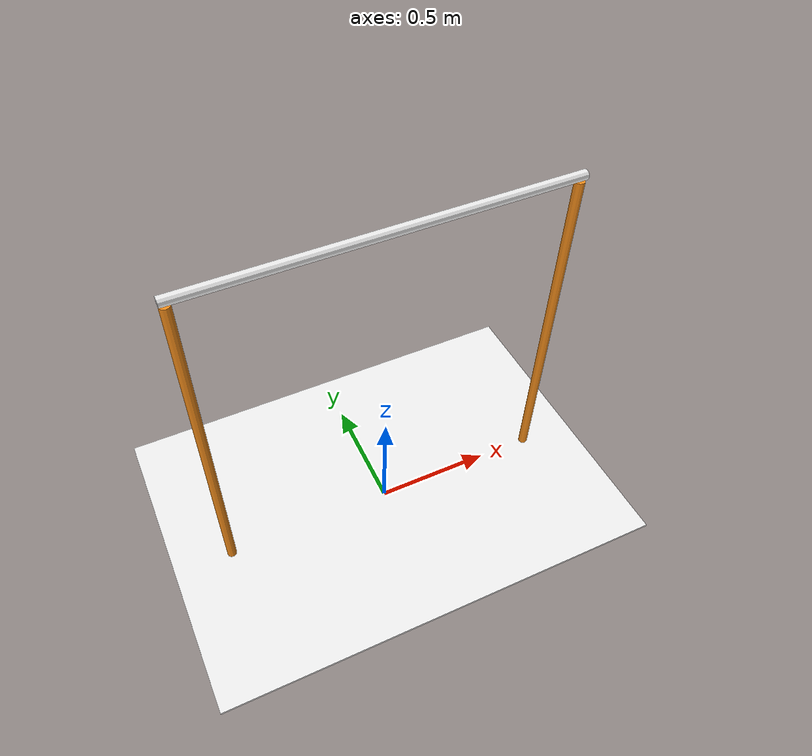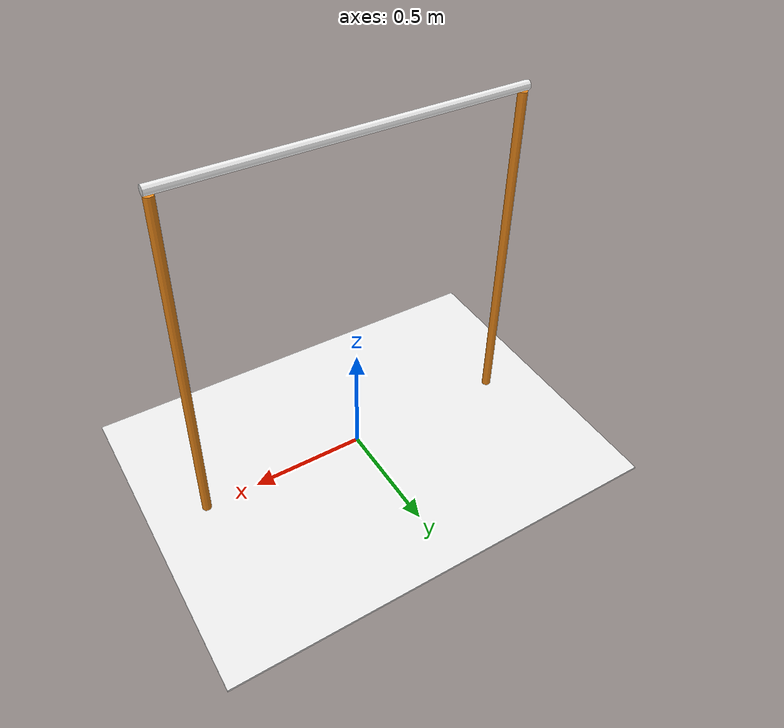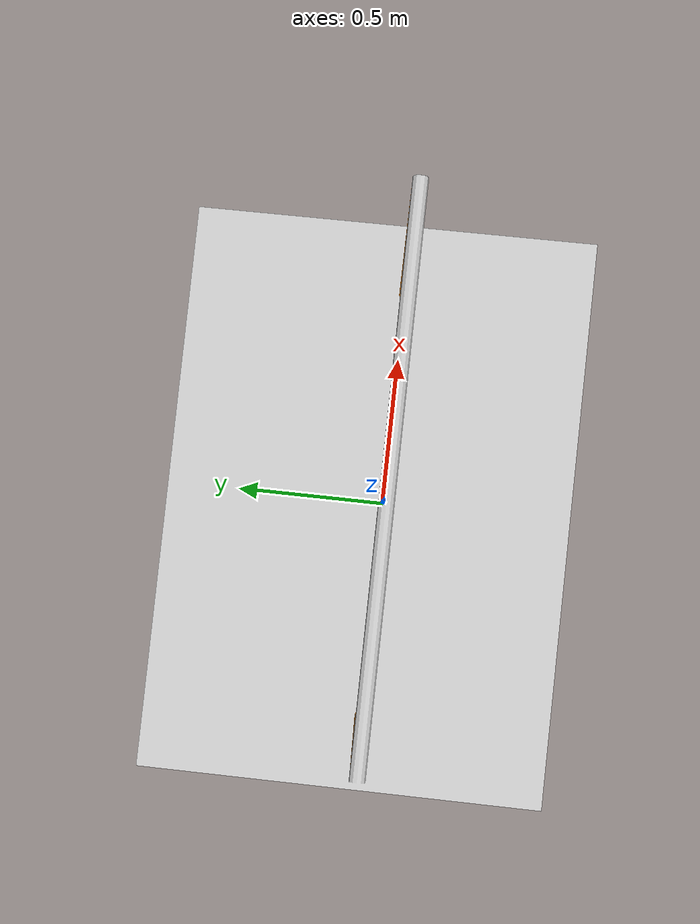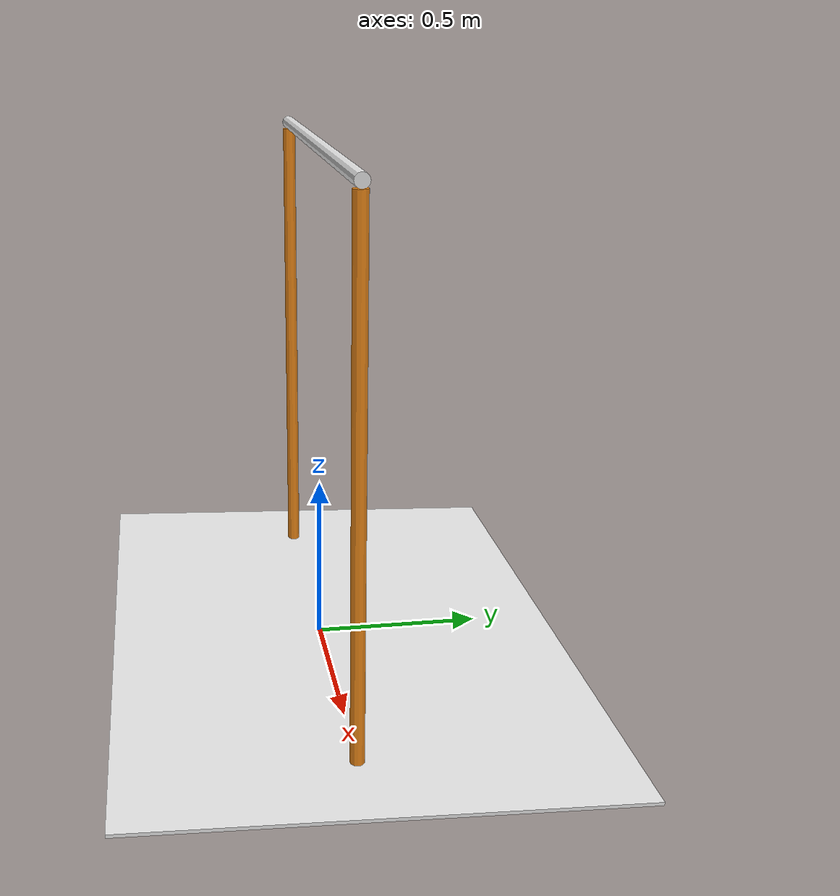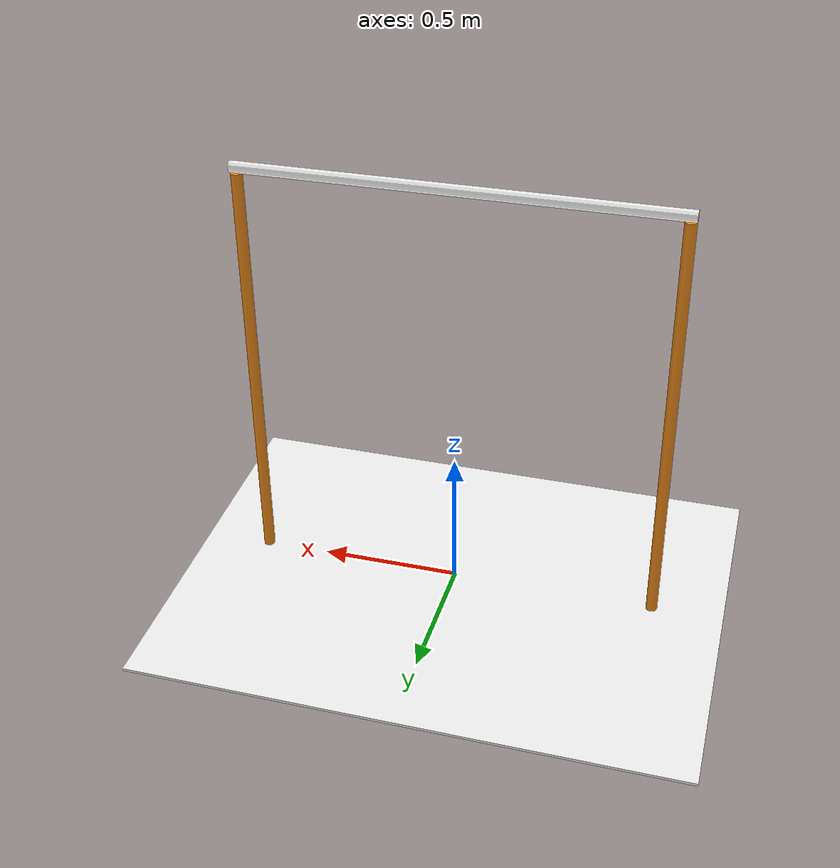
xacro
<?xml version="1.0"?>
<robot
  name="gates_qualification" xmlns:xacro="http://www.ros.org/wiki/xacro">

  <xacro:include filename="$(find gates_qualification)/urdf/materials.xacro" />
  <xacro:include filename="$(find gates_qualification)/urdf/gates_qualification.gazebo" />

  <link
    name="Base_parent_link">
    <inertial>
      <origin
        xyz="-0.0057743 0.049442 0.091345"
        rpy="0 0 0" />
      <mass
        value="229.59" />
      <inertia
        ixx="67.29"
        ixy="0.0045203"
        ixz="-0.13062"
        iyy="103.67"
        iyz="2.5554"
        izz="106.2" />
    </inertial>
    <visual>
      <origin
        xyz="0 0 0"
        rpy="0 0 0" />
      <geometry>
        <mesh
          filename="package://gates_qualification/meshes/Base_parent_link.STL" />
      </geometry>
      <material
        name="white">
      </material>
    </visual>
    <collision>
      <origin
        xyz="0 0 0"
        rpy="0 0 0" />
      <geometry>
        <mesh
          filename="package://gates_qualification/meshes/Base_parent_link.STL" />
      </geometry>
    </collision>
  </link>
  <link
    name="Left_link">
    <inertial>
      <origin
        xyz="-0.73 0.75 2.8423E-19"
        rpy="0 0 0" />
      <mass
        value="14.812" />
      <inertia
        ixx="2.7787"
        ixy="-4.2936E-34"
        ixz="0"
        iyy="0.0029624"
        iyz="7.3896E-34"
        izz="2.7787" />
    </inertial>
    <visual>
      <origin
        xyz="0 0 0"
        rpy="0 0 0" />
      <geometry>
        <mesh
          filename="package://gates_qualification/meshes/Left_link.STL" />
      </geometry>
      <material
        name="orange">
      </material>
    </visual>
    <collision>
      <origin
        xyz="0 0 0"
        rpy="0 0 0" />
      <geometry>
        <mesh
          filename="package://gates_qualification/meshes/Left_link.STL" />
      </geometry>
    </collision>
  </link>
  <joint
    name="Left_part"
    type="fixed">
    <origin
      xyz="0 0 0"
      rpy="1.5708 0 0" />
    <parent
      link="Base_parent_link" />
    <child
      link="Left_link" />
    <axis
      xyz="0 0 0" />
  </joint>
  <link
    name="Right_link">
    <inertial>
      <origin
        xyz="0.73 0.75 9.5828E-19"
        rpy="0 0 0" />
      <mass
        value="14.812" />
      <inertia
        ixx="2.7787"
        ixy="-4.2936E-34"
        ixz="0"
        iyy="0.0029624"
        iyz="-8.1642E-34"
        izz="2.7787" />
    </inertial>
    <visual>
      <origin
        xyz="0 0 0"
        rpy="0 0 0" />
      <geometry>
        <mesh
          filename="package://gates_qualification/meshes/Right_link.STL" />
      </geometry>
      <material
        name="orange">
      </material>
    </visual>
    <collision>
      <origin
        xyz="0 0 0"
        rpy="0 0 0" />
      <geometry>
        <mesh
          filename="package://gates_qualification/meshes/Right_link.STL" />
      </geometry>
    </collision>
  </link>
  <joint
    name="Right_part"
    type="fixed">
    <origin
      xyz="0 0 0"
      rpy="1.5708 0 0" />
    <parent
      link="Base_parent_link" />
    <child
      link="Right_link" />
    <axis
      xyz="0 0 0" />
  </joint>
</robot>
